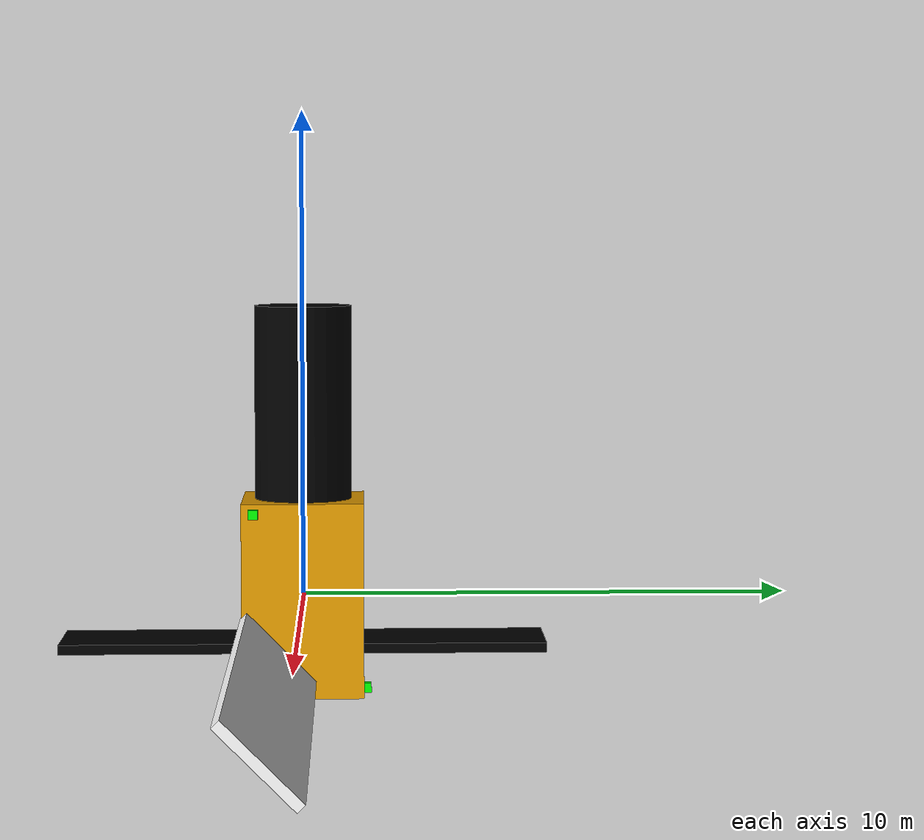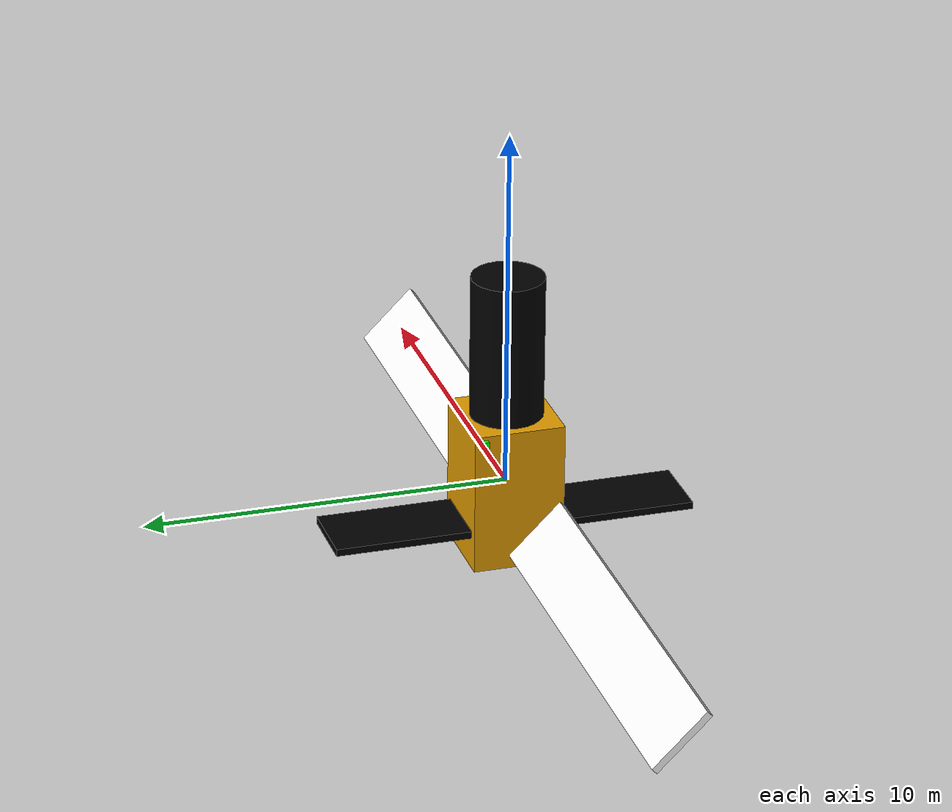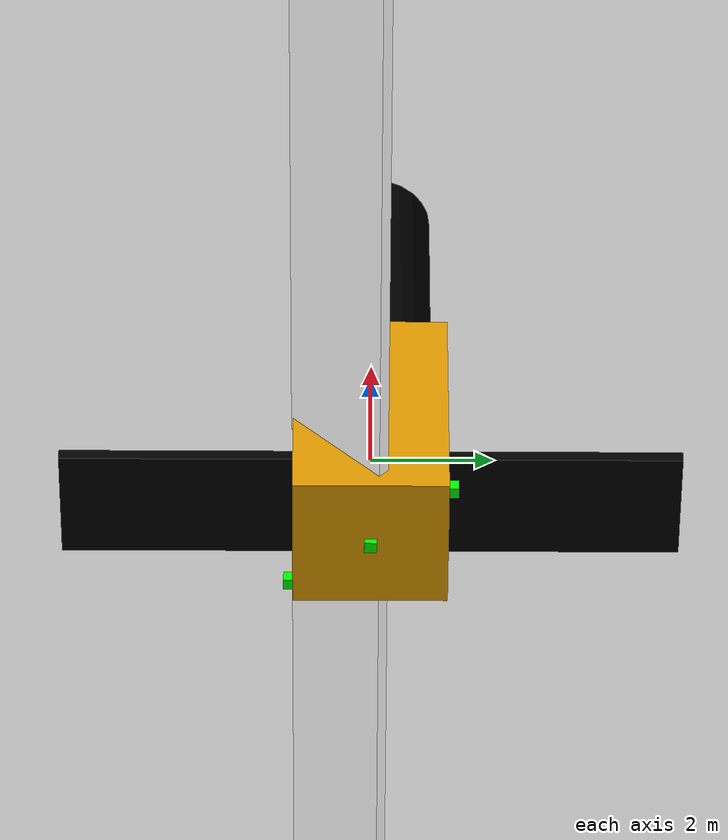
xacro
<?xml version="1.0" encoding="utf-8"?>
<robot name="satellite" xmlns:xacro="http://www.ros.org/wiki/xacro">
    <material name="blue">
        <color rgba="0 0 0.8 1"/>
    </material>

    <material name="black">
        <color rgba="0 0 0 1"/>
    </material>

    <material name="green">
        <color rgba="0 1 0 1"/>
    </material>

    <material name="white">
        <color rgba="1 1 1 1"/>
    </material>

    <!-- links -->
    <link name="base_link">
        <inertial>
            <mass value="1"/>
            <origin xyz="0 0 0"/>
            <inertia ixx="1" ixy="0.0" ixz="0.0" iyy="1" iyz="0.0" izz="1"/>
        </inertial>

        <visual>
            <geometry>
                <box size="2.5 2.5 4"/>
            </geometry>
        </visual>

    </link>

    <!-- antenna and communication arrays -->
    <link name="front">
        <visual>
            <geometry>
                <cylinder length="4" radius="1"/>
            </geometry>

            <origin rpy="0 0 0" xyz="0 0 2"/>
            <material name="black"/>
        </visual>

        <inertial>
            <mass value="1e-12"/>
            <origin xyz="0 0 0"/>
            <inertia ixx="1e-12" ixy="0.0" ixz="0.0" iyy="1e-12" iyz="0.0" izz="1e-12"/>
        </inertial>
    </link>

    <link name="left_array">
        <visual>
            <geometry>
                <box size="12 0.2 2"/>
            </geometry>

            <origin rpy="0.785 0 0" xyz="-6 0 0"/>
            <material name="white"/>
        </visual>

        <inertial>
            <mass value="1e-12"/>
            <origin xyz="0 0 0"/>
            <inertia ixx="1e-12" ixy="0.0" ixz="0.0" iyy="1e-12" iyz="0.0" izz="1e-12"/>
        </inertial>
    </link>

    <link name="right_array">
        <visual>
            <geometry>
                <box size="12 0.2 2"/>
            </geometry>

            <origin rpy="0.785 0 0" xyz="6 0 0"/>
            <material name="white"/>
        </visual>

        <inertial>
            <mass value="1e-12"/>
            <origin xyz="0 0 0"/>
            <inertia ixx="1e-12" ixy="0.0" ixz="0.0" iyy="1e-12" iyz="0.0" izz="1e-12"/>
        </inertial>
    </link>

    <link name="top_array">
        <visual>
            <geometry>
                <box size="2 4 0.2"/>
            </geometry>

            <origin rpy="0 0 0" xyz="0 2 0"/>
            <material name="black"/>
        </visual>

        <inertial>
            <mass value="1e-12"/>
            <origin xyz="0 0 0"/>
            <inertia ixx="1e-12" ixy="0.0" ixz="0.0" iyy="1e-12" iyz="0.0" izz="1e-12"/>
        </inertial>
    </link>

    <link name="bot_array">
        <visual>
            <geometry>
                <box size="2 4 0.2"/>
            </geometry>

            <origin rpy="0 0 0" xyz="0 -2 0"/>
            <material name="black"/>
        </visual>

        <inertial>
            <mass value="1e-12"/>
            <origin xyz="0 0 0"/>
            <inertia ixx="1e-12" ixy="0.0" ixz="0.0" iyy="1e-12" iyz="0.0" izz="1e-12"/>
        </inertial>
    </link>

    <!-- thrusters -->
    <xacro:macro name="thruster" params="name origin">
        <link name="thruster_${name}">
            <visual>
                <geometry>
                    <box size="0.2 0.2 0.2"/>
                </geometry>

                <origin rpy="0 0 0" xyz="0 0 0"/>
                <material name="green"/>
            </visual>
        </link>

        <!-- Prismatic joints with no effort so pinocchio recognizes
            them as controllable joints.
         -->
        <joint name="base_to_thruster_${name}" type="revolute">
            <limit effort="1e-10" lower="0" upper="1e-10" velocity="1e-10"/>
            <axis xyz="0 0 1"/>

            <parent link="base_link"/>
            <child link="thruster_${name}"/>
            <origin xyz="${origin}"/>
        </joint>

        <inertial>
            <mass value="1e-12"/>
            <origin xyz="0 0 0"/>
            <inertia ixx="1e-12" ixy="0.0" ixz="0.0" iyy="1e-12" iyz="0.0" izz="1e-12"/>
        </inertial>
    </xacro:macro>

    <xacro:thruster name="bot" origin="0 0 -2"/>
    <xacro:thruster name="bot_1" origin="-1 -1.3 -1.8"/>
    <xacro:thruster name="bot_6" origin="1 1.3 -1.8"/>

    <xacro:thruster name="top" origin="0 0 2"/>
    <xacro:thruster name="top_3" origin="1.3 -1 1.8"/>
    <xacro:thruster name="top_8" origin="-1.3 1 1.8"/>

    <!-- joints -->
    <joint name="base_to_front" type="fixed">
        <parent link="base_link"/>
        <child link="front"/>
        <origin xyz="0 0 2"/>
    </joint>

    <joint name="base_to_left_array" type="fixed">
        <parent link="base_link"/>
        <child link="left_array"/>
        <origin xyz="-1 -0.5 -1"/>
    </joint>

    <joint name="base_to_right_array" type="fixed">
        <parent link="base_link"/>
        <child link="right_array"/>
        <origin xyz="1 -0.5 -1"/>
    </joint>

    <joint name="base_to_top_array" type="fixed">
        <parent link="base_link"/>
        <child link="top_array"/>
        <origin xyz="0 1 -1"/>
    </joint>

    <joint name="base_to_bot_array" type="fixed">
        <parent link="base_link"/>
        <child link="bot_array"/>
        <origin xyz="0 -1 -1"/>
    </joint>
</robot>
